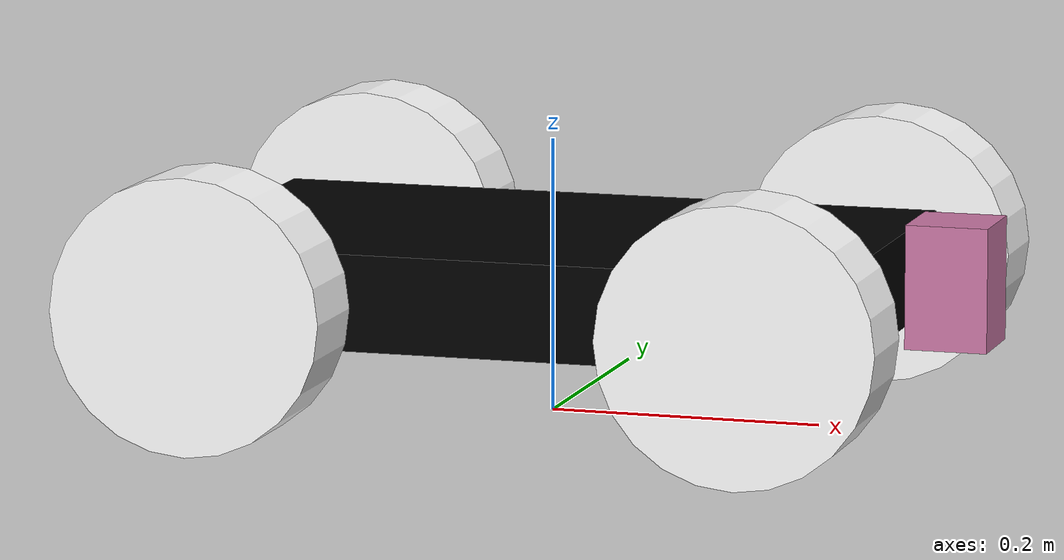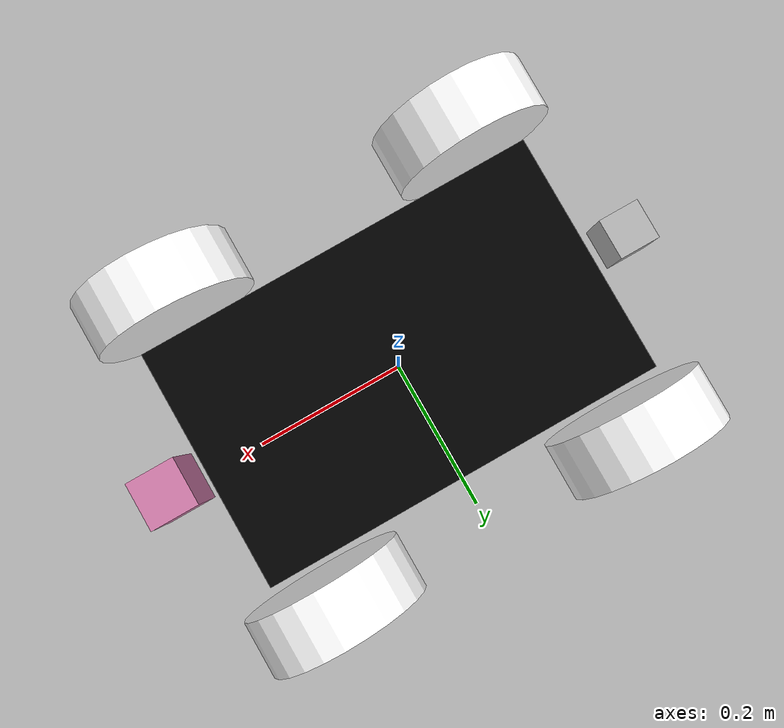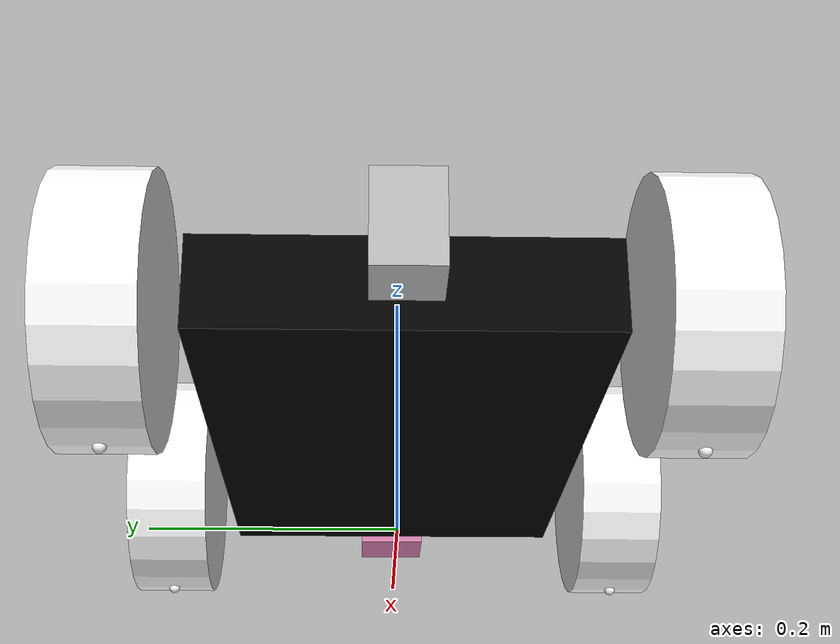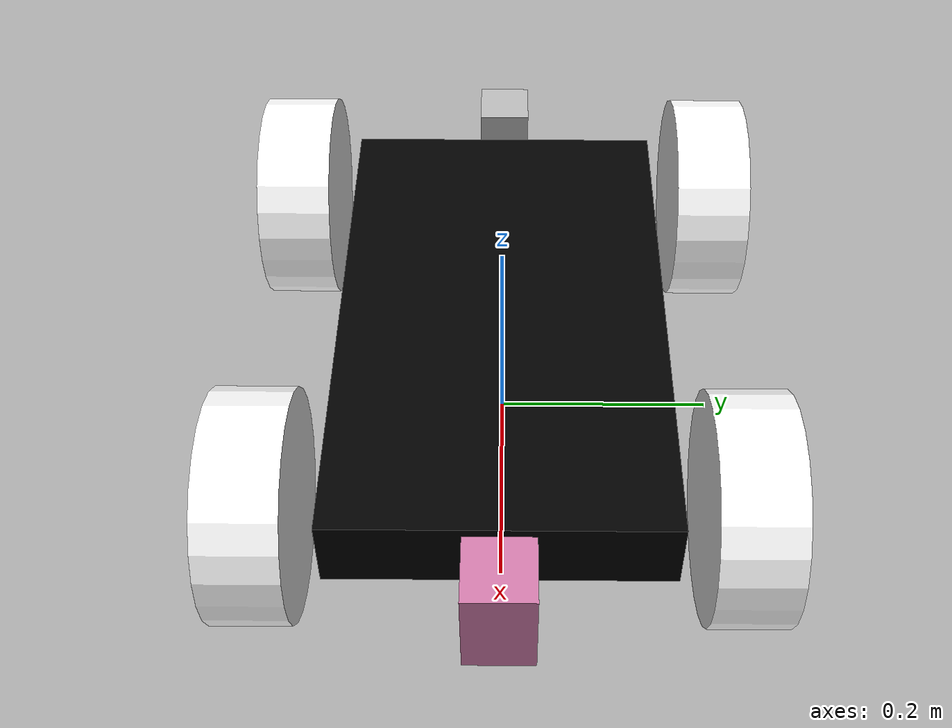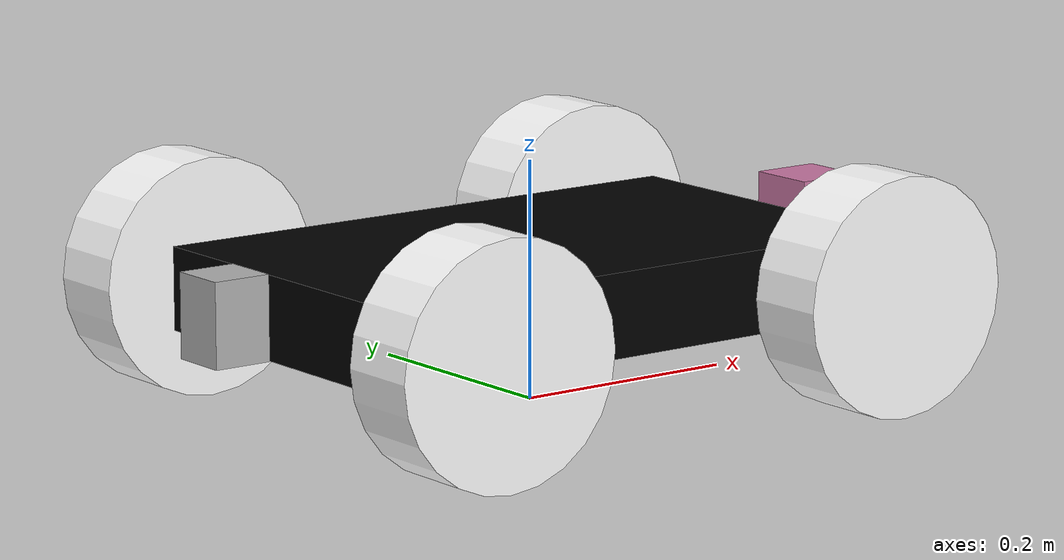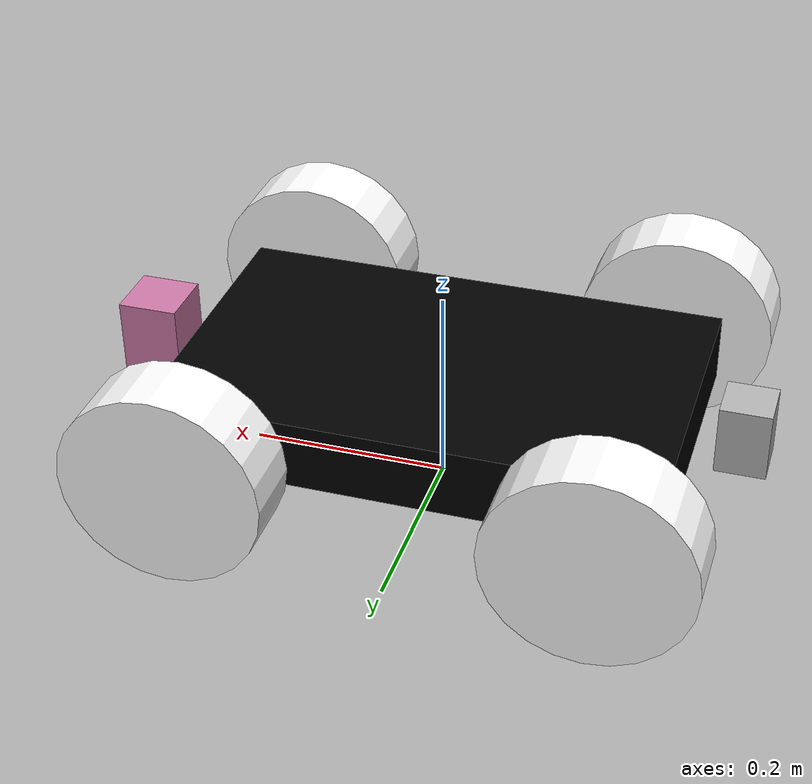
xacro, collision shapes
<?xml version="1.0"?>

<robot name="hera"
       xmlns:sensor="http://playerstage.sourceforge.net/gazebo/xmlschema/#sensor"
       xmlns:controller="http://playerstage.sourceforge.net/gazebo/xmlschema/#controller"
       xmlns:interface="http://playerstage.sourceforge.net/gazebo/xmlschema/#interface"
       xmlns:xacro="http://ros.org/wiki/xacro" >

  <!-- ######################### includes ################################## -->

  <!-- commons -->
  <xacro:include filename="$(find reinforcement)/robots/urdf/commons.urdf.xacro" />

  <!-- actuators -->
  <xacro:include filename="$(find reinforcement)/robots/urdf/actuators/base.urdf.xacro" />

  <!-- sensors -->
  <xacro:include filename="$(find reinforcement)/robots/urdf/sensors/hokuyo_utm.urdf.xacro"/>
  <xacro:include filename="$(find reinforcement)/robots/urdf/sensors/hokuyo_urg.urdf.xacro"/>

  <!-- simulation -->
  <xacro:include filename="$(find reinforcement)/robots/urdf/simulation/control.gazebo.xacro" />
  <xacro:include filename="$(find reinforcement)/robots/urdf/simulation/base.gazebo.xacro"/>
  <xacro:include filename="$(find reinforcement)/robots/urdf/simulation/hokuyo_utm.gazebo.xacro" />
  <xacro:include filename="$(find reinforcement)/robots/urdf/simulation/hokuyo_urg.gazebo.xacro" />

<!-- ######################## robot parts ################################## -->

  <!-- base -->
  <xacro:base
    name="base"/>

  <!-- base laser front -->
  <xacro:hokuyo_utm
    name="base_scan_front"
    parent="base">
    <origin xyz="0.3 0 0.01" rpy="0 0 0"/>
  </xacro:hokuyo_utm>

  <!-- base laser back -->
  <xacro:hokuyo_urg
    name="base_scan_back"
    parent="base">
    <origin xyz="-0.3 0 0.01" rpy="0 0 ${M_PI}"/>
  </xacro:hokuyo_urg>

<!-- ####################### gazebo extensions ##############################-->

  <!-- base -->
  <xacro:gazebo_base
    reference="base"
    update_rate="30"/>

  <!-- hokuyo_utm -->
  <xacro:gazebo_hokuyo_utm
    reference="base_scan_front"
    update_rate="10"
    min_angle="-1.45"
    max_angle="1.45"/>

  <!-- hokuyo_urg -->
  <xacro:gazebo_hokuyo_urg
    reference="base_scan_back"
    update_rate="10"
    min_angle="-1.45"
    max_angle="1.45" />

</robot>

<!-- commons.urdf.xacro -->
<robot xmlns:xacro="http://ros.org/wiki/xacro">

  <!-- Math -->
  <xacro:property name="M_PI" value="3.1415926535897931" />

  <!-- colors -->
  <material name="black">
    <color rgba="0.0 0.0 0.0 1.0"/>
  </material>
  <material name="dark_grey">
    <color rgba="0.25 0.25 0.25 1.0"/>
  </material>
  <material name="grey">
    <color rgba="0.5 0.5 0.5 1.0"/>
  </material>
  <material name="light_grey">
    <color rgba="0.75 0.75 0.75 1.0"/>
  </material>
  <material name="white">
    <color rgba="1.0 1.0 1.0 1.0"/>
  </material>

  <!-- Macros -->

  <xacro:macro name="create_box" params="m x y z *origin">
    <inertial>
      <mass value="${m}"/>
      <inertia
        ixx="${1/12*m*(y*y+z*z)}" ixy="0.0" ixz="0.0"
        iyy="${1/12*m*(x*x+z*z)}" iyz="0.0"
        izz="${1/12*m*(x*x+y*y)}"/>
    </inertial>
    <collision name="collision">
      <xacro:insert_block name="origin"/>
      <geometry>
        <box size="${x} ${y} ${z}"/>
      </geometry>
    </collision>
  </xacro:macro>

  <xacro:macro name="create_cylinder" params="m r l *origin">
    <inertial>
      <mass value="${m}"/>
      <inertia
        ixx="${1/12*m*(3*r*r+l*l)}" ixy="0.0" ixz="0.0"
        iyy="${1/12*m*(3*r*r+l*l)}" iyz="0.0"
        izz="${1/2*(m*r*r)}"/>
    </inertial>
    <collision name="collision">
      <xacro:insert_block name="origin"/>
      <geometry>
        <cylinder radius="${r}" length="${l}"/>
      </geometry>
    </collision>
  </xacro:macro>

  <xacro:macro name="create_sphere" params="m r *origin">
    <inertial>
      <mass value="${m}"/>
      <inertia
        ixx="${(2/5)*m*r*r}" ixy="0.0" ixz="0.0"
        iyy="${(2/5)*m*r*r}" iyz="0.0"
        izz="${(2/5)*m*r*r}"/>
    </inertial>
    <collision name="collision">
      <xacro:insert_block name="origin"/>
      <geometry>
        <sphere radius="${r}"/>
      </geometry>
    </collision>
  </xacro:macro>

</robot>

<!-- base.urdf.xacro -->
<robot xmlns:sensor="http://playerstage.sourceforge.net/gazebo/xmlschema/#sensor"
       xmlns:controller="http://playerstage.sourceforge.net/gazebo/xmlschema/#controller"
       xmlns:interface="http://playerstage.sourceforge.net/gazebo/xmlschema/#interface"
       xmlns:xacro="http://ros.org/wiki/xacro">

  <xacro:property name="base_mass"      value="99.0"/>
  <xacro:property name="base_size_x"    value="0.50"/>
  <xacro:property name="base_size_y"    value="0.30"/>
  <xacro:property name="base_size_z"    value="0.07"/>

  <xacro:property name="wheel_mass"     value="2.50"/>
  <xacro:property name="wheel_radius"   value="0.10"/>
  <xacro:property name="wheel_length"   value="0.07"/>
  <xacro:property name="wheel_gap"      value="0.02"/>

  <xacro:property name="wheel_effort"   value="30.0" />
  <xacro:property name="wheel_velocity" value="0.50" />

  <xacro:macro name="wheel" params="name parent *origin *visual">
    <link name="${name}">
      <xacro:create_cylinder m="${wheel_mass}" r="${wheel_radius}" l="${wheel_length}">
        <origin xyz="0 0 0" rpy="${M_PI/2} 0 0"/>
      </xacro:create_cylinder>
      <xacro:insert_block name="visual"/>

      <!-- wheel suport: used to reduce wheel contact in the floor -->
      <xacro:create_sphere m="${0.001}" r="${0.005}">
        <origin xyz="0 0 -${wheel_radius}" rpy="0 0 0"/>
      </xacro:create_sphere>
      <!-- wheel suport -->

    </link>
    <!-- should be continuous. Change if you do not use wheel support -->
    <joint name="joint_${parent}_to_${name}" type="fixed">
      <xacro:insert_block name="origin" />
      <parent link="${parent}"/>
      <child link="${name}"/>

    </joint>

  </xacro:macro>

  <xacro:macro name="base" params="name">

    <!-- footprint -->
    <link name='${name}_footprint'/>
    <joint name="joint_${name}_footprint_to_${name}" type="fixed">
      <origin xyz="0 0 ${wheel_radius}"/>
      <parent link="${name}_footprint"/>
      <child link="${name}"/>
    </joint>

    <!-- base -->
    <link name="${name}">
      <xacro:create_box m="${base_mass}" x="${base_size_x}" y="${base_size_y}" z="${base_size_z}">
        <origin xyz="0 0 0" rpy="0 0 0"/>
      </xacro:create_box>
      <visual >
        <material name="black"/>
        <geometry>
          <mesh filename="package://reinforcement/robots/meshes/base.stl"/>
        </geometry>
      </visual>
    </link>

    <!-- front right wheel -->
    <xacro:wheel name="${name}_wheelFR" parent="${name}">
      <origin
        xyz="${0.4*base_size_x} -${base_size_y/2+wheel_length/2+wheel_gap} 0.0"
        rpy="0 0 0" />
      <visual>
        <origin xyz="0 -0.045 0" rpy=" 0 0 -${M_PI/2}"/>
        <material name="white"/>
        <geometry>
          <mesh filename="package://reinforcement/robots/meshes/wheelF.stl"/>
        </geometry>
      </visual>
    </xacro:wheel>

    <!-- front left wheel -->
    <xacro:wheel name="${name}_wheelFL" parent="${name}">
      <origin
        xyz="${0.4*base_size_x} ${base_size_y/2+wheel_length/2+wheel_gap} 0.0"
        rpy="0 0 0" />
      <visual>
        <origin xyz="0 0.045 0" rpy=" 0 0 ${M_PI/2}"/>
        <material name="white"/>
        <geometry>
          <mesh filename="package://reinforcement/robots/meshes/wheelF.stl"/>
        </geometry>
      </visual>
    </xacro:wheel>

    <!-- back right wheel -->
    <xacro:wheel name="${name}_wheelBR" parent="${name}">
      <origin
        xyz="-${0.4*base_size_x} -${base_size_y/2+wheel_length/2+wheel_gap} 0.0"
        rpy="0 0 0"/>
      <visual>
        <origin xyz="0 -0.045 0" rpy="0 0 -${M_PI/2}"/>
        <material name="white"/>
        <geometry>
          <mesh filename="package://reinforcement/robots/meshes/wheelB.stl"/>
        </geometry>
      </visual>
    </xacro:wheel>

    <!-- back left wheel -->
    <xacro:wheel name="${name}_wheelBL" parent="${name}">
      <origin
        xyz="-${0.4*base_size_x} ${base_size_y/2+wheel_length/2+wheel_gap} 0.0"
        rpy="0 0 0"/>
      <visual>
        <origin xyz="0 0.045 0" rpy="0 0 ${M_PI/2}"/>
        <material name="white"/>
        <geometry>
          <mesh filename="package://reinforcement/robots/meshes/wheelB.stl"/>
        </geometry>
      </visual>
    </xacro:wheel>

  </xacro:macro>
</robot>

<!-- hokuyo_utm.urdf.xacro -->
<robot xmlns:xacro="http://ros.org/wiki/xacro">

  <xacro:property name="hokuyo_utm_mass"   value="0.01"/>
  <xacro:property name="hokuyo_utm_size_x" value="0.06"/>
  <xacro:property name="hokuyo_utm_size_y" value="0.06"/>
  <xacro:property name="hokuyo_utm_size_z" value="0.09"/>

  <xacro:macro name="hokuyo_utm" params="name parent *origin">

    <link name="${name}" type="laser">
      <xacro:create_box
        m="${hokuyo_utm_mass}"
        x="${hokuyo_utm_size_x}"
        y="${hokuyo_utm_size_y}"
        z="${hokuyo_utm_size_z}">
        <origin xyz="0 0 0" rpy="0 0 0"/>
      </xacro:create_box>
      <visual>
        <origin xyz="0 0 0" rpy="${M_PI/2} 0 0" />
        <geometry>
          <mesh filename="package://reinforcement/robots/meshes/hokuyo_utm.stl"/>
        </geometry>
      </visual>
    </link>

    <joint name="${name}_hokuyo_utm_joint" type="fixed">
      <xacro:insert_block name="origin" />
      <parent link="${parent}"/>
      <child link="${name}"/>
    </joint>

  </xacro:macro>
</robot>

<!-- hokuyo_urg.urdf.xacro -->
<robot xmlns:xacro="http://ros.org/wiki/xacro">

  <xacro:property name="hokuyo_urg_mass"   value="0.01"/>
  <xacro:property name="hokuyo_urg_size_x" value="0.05"/>
  <xacro:property name="hokuyo_urg_size_y" value="0.05"/>
  <xacro:property name="hokuyo_urg_size_z" value="0.07"/>

  <xacro:macro name="hokuyo_urg" params="name parent *origin">

    <link name="${name}" type="laser">
      <xacro:create_box
        m="${hokuyo_urg_mass}"
        x="${hokuyo_urg_size_x}"
        y="${hokuyo_urg_size_y}"
        z="${hokuyo_urg_size_z}">
        <origin xyz="0 0 0" rpy="0 0 0"/>
      </xacro:create_box>
      <visual>
        <origin xyz="0 0 0" rpy="0 0 0" />
        <geometry>
          <mesh filename="package://reinforcement/robots/meshes/hokuyo_urg.dae" />
        </geometry>
      </visual>
    </link>

    <joint name="joint_${parent}_to_${name}_hokuyo_urg" type="fixed">
      <xacro:insert_block name="origin"/>
      <parent link="${parent}"/>
      <child link="${name}"/>
    </joint>

  </xacro:macro>
</robot>
